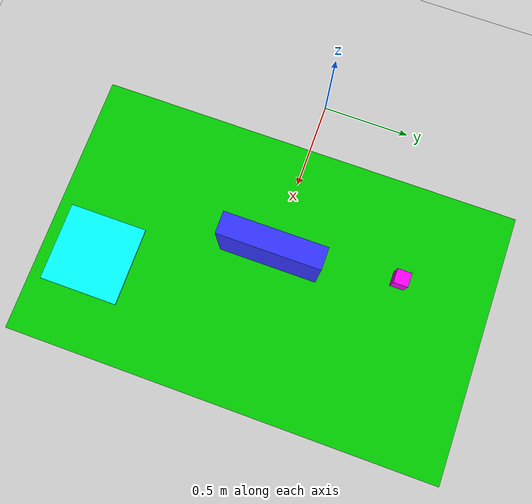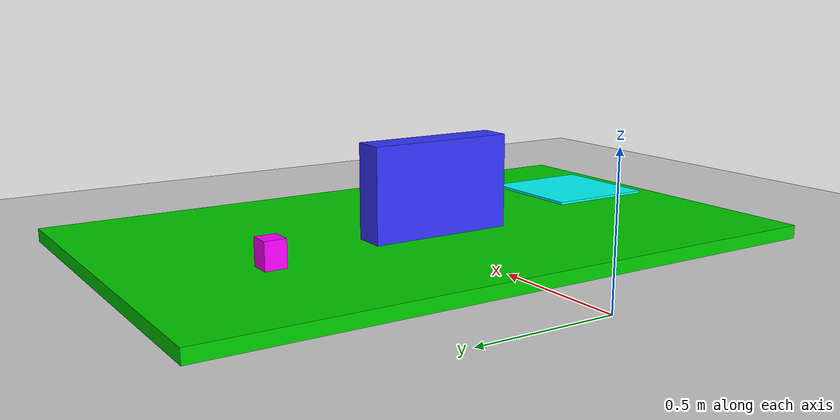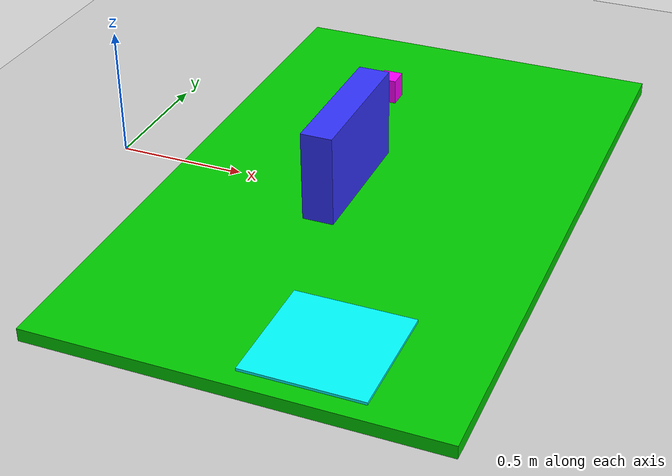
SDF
<?xml version="1.0" ?>
<sdf version="1.8">
  <world name="empty">

    <gravity>0 0 -9.81</gravity>

    <physics name="1ms" type="dart">
      <max_step_size>0.001</max_step_size>
      <real_time_factor>1.0</real_time_factor>
    </physics>

    <plugin
      filename="ignition-gazebo-physics-system"
      name="ignition::gazebo::systems::Physics">
    </plugin>

    <plugin
      filename="ignition-gazebo-user-commands-system"
      name="ignition::gazebo::systems::UserCommands">
    </plugin>

    <plugin
      filename="ignition-gazebo-scene-broadcaster-system"
      name="ignition::gazebo::systems::SceneBroadcaster">
    </plugin>

    <light type="directional" name="sun">
      <cast_shadows>true</cast_shadows>
      <pose>0 0 10 0 0 0</pose>
      <diffuse>0.8 0.8 0.8 1</diffuse>
      <specular>0.2 0.2 0.2 1</specular>
      <direction>-0.5 0.1 -0.9</direction>
    </light>

    <!-- 地面 -->
    <model name="ground_plane">
      <static>true</static>
      <link name="link">
        <collision name="collision">
          <geometry>
            <plane>
              <normal>0 0 1</normal>
              <size>10 10</size>
            </plane>
          </geometry>
        </collision>

        <visual name="visual">
          <geometry>
            <plane>
              <normal>0 0 1</normal>
              <size>10 10</size>
            </plane>
          </geometry>
          <material>
            <ambient>0.8 0.8 0.8 1</ambient>
            <diffuse>0.8 0.8 0.8 1</diffuse>
          </material>
        </visual>
      </link>
    </model>

    <!-- 正方形桌面：足够大，但不覆盖机械臂 base -->
    <model name="table">
      <static>true</static>
      <pose>1.05 0.00 0.025 0 0 0</pose>

      <link name="link">
        <collision name="collision">
          <geometry>
            <box>
              <size>1.50 2.42 0.05</size>
            </box>
          </geometry>
        </collision>

        <visual name="visual">
          <geometry>
            <box>
              <size>1.50 2.42 0.05</size>
            </box>
          </geometry>
          <material>
            <ambient>0.0 0.8 0.0 1.0</ambient>
            <diffuse>0.0 0.8 0.0 1.0</diffuse>
          </material>
        </visual>
      </link>
    </model>

    <!-- 紫色待抓取木块：放在障碍物左侧 -->
    <!-- 紫色待抓取木块：动态物体，允许被夹爪 attach / detach -->
    <model name="target_object">
      <static>false</static>

      <!-- table 顶面 z=0.05，木块高 0.10，所以中心 z = 0.10 -->
      <pose>0.85 0.70 0.10 0 0 0</pose>

      <link name="link">
        <inertial>
          <mass>0.05</mass>
          <inertia>
            <ixx>0.000068</ixx>
            <iyy>0.000068</iyy>
            <izz>0.000053</izz>
            <ixy>0</ixy>
            <ixz>0</ixz>
            <iyz>0</iyz>
          </inertia>
        </inertial>

        <collision name="collision">
          <geometry>
            <box>
              <size>0.08 0.08 0.10</size>
            </box>
          </geometry>
          <surface>
            <friction>
              <ode>
                <mu>2.0</mu>
                <mu2>2.0</mu2>
              </ode>
            </friction>
            <contact>
              <ode>
                <kp>100000</kp>
                <kd>10</kd>
              </ode>
            </contact>
          </surface>
        </collision>

        <visual name="visual">
          <geometry>
            <box>
              <size>0.08 0.08 0.10</size>
            </box>
          </geometry>
          <material>
            <ambient>1.0 0.0 1.0 1.0</ambient>
            <diffuse>1.0 0.0 1.0 1.0</diffuse>
          </material>
        </visual>
      </link>
    </model>

    <!-- 蓝色中间障碍物：放在木块和放置区之间 -->
    <model name="left_wall_obstacle">
      <static>true</static>
      <pose>0.95 0.00 0.225 0 0 0</pose>

      <link name="link">
        <collision name="collision">
          <geometry>
            <box>
              <size>0.12 0.55 0.35</size>
            </box>
          </geometry>
        </collision>

        <visual name="visual">
          <geometry>
            <box>
              <size>0.12 0.55 0.35</size>
            </box>
          </geometry>
          <material>
            <ambient>0.2 0.2 1.0 1.0</ambient>
            <diffuse>0.2 0.2 1.0 1.0</diffuse>
          </material>
        </visual>
      </link>
    </model>

    <!-- 青色放置区域：放在障碍物右侧 -->
    <model name="place_area">
      <static>true</static>
      <pose>1.27 -0.92 0.055 0 0 0</pose>

      <link name="link">
        <collision name="collision">
          <geometry>
            <box>
              <size>0.44 0.44 0.01</size>
            </box>
          </geometry>
        </collision>

        <visual name="visual">
          <geometry>
            <box>
              <size>0.44 0.44 0.01</size>
            </box>
          </geometry>
          <material>
            <ambient>0.0 1.0 1.0 1.0</ambient>
            <diffuse>0.0 1.0 1.0 1.0</diffuse>
          </material>
        </visual>
      </link>
    </model>

  </world>
</sdf>
